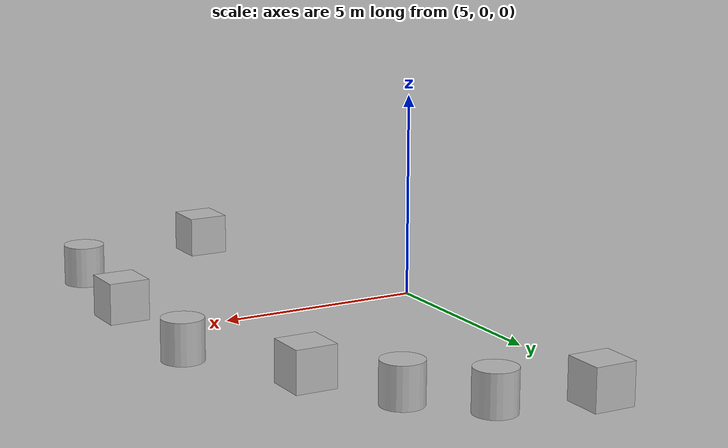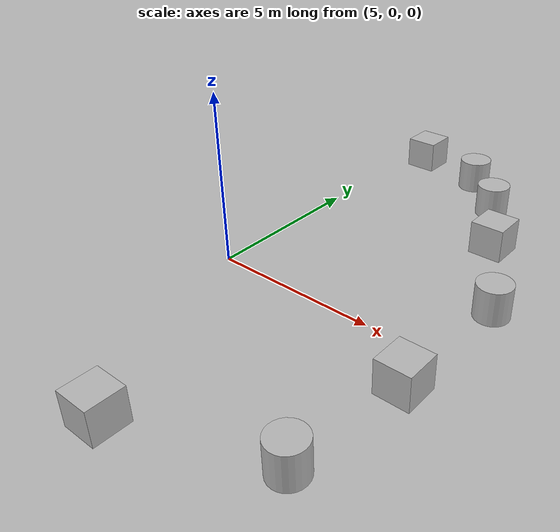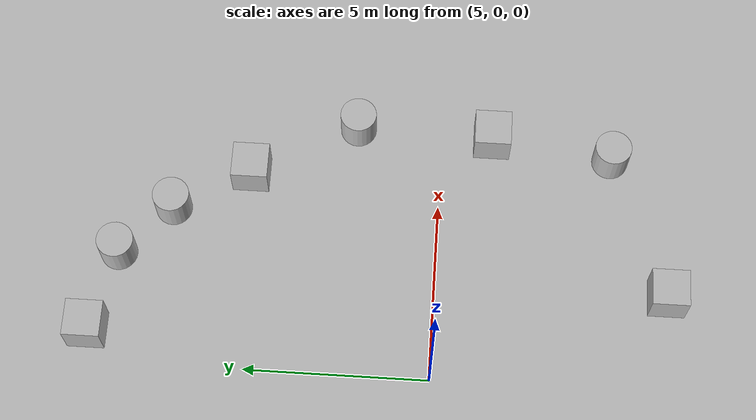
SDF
<sdf version="1.4">
 <world name="default">
  <include><uri>model://ground_plane</uri></include>
  <include><uri>model://sun</uri></include>
  <model name="my_mesh">
   <static>true</static>
   <link name="body">
    <collision name="geom"><geometry><mesh><uri>file://pasto1.dae</uri></mesh></geometry></collision>
    <visual name="visual"><geometry><mesh><uri>file://pasto1.dae</uri></mesh></geometry></visual>
   </link>
   <link name="Box1">
    <pose>7.675451 -6.285091 0.523794 .0 .0 .0</pose>
    <inertial><mass>0.1</mass></inertial>
    <collision name="Box1_collision"><geometry><box><size>1 1 1</size></box></geometry></collision>
    <visual name="Box1_visual"><geometry><box><size>1 1 1</size></box></geometry></visual>
   </link>
   <link name="Box2">
    <pose>12.094172 -1.407658 0.523194 .0 .0 .0</pose>
    <inertial><mass>0.1</mass></inertial>
    <collision name="Box2_collision"><geometry><box><size>1 1 1</size></box></geometry></collision>
    <visual name="Box2_visual"><geometry><box><size>1 1 1</size></box></geometry></visual>
   </link>
   <link name="Box3">
    <pose>10.69540 5.231697 0.523794 .0 .0 .0</pose>
    <inertial><mass>0.1</mass></inertial>
    <collision name="Box3_collision"><geometry><box><size>1 1 1</size></box></geometry></collision>
    <visual name="Box3_visual"><geometry><box><size>1 1 1</size></box></geometry></visual>
   </link>
   <link name="Box4">
    <pose>5.8616919 9.229774 0.523794 .0 .0 .0</pose>
    <inertial><mass>0.1</mass></inertial>
    <collision name="Box4_collision"><geometry><box><size>1 1 1</size></box></geometry></collision>
    <visual name="Box4_visual"><geometry><box><size>1 1 1</size></box></geometry></visual>
   </link>
   <link name="Cilindro1">
    <pose>8.117650 8.651960 0.523794 0 0 0</pose>
    <collision name="collision">
     <geometry><cylinder><radius>0.5</radius><length>1</length></cylinder></geometry>
    </collision>
    <visual name="visual">
     <geometry><cylinder><radius>0.5</radius><length>1</length></cylinder></geometry>
    </visual>
   </link>
   <link name="Cilindro2">
    <pose>12.244259 2.348959 0.523787 0 0 0</pose>
    <collision name="collision">
     <geometry><cylinder><radius>0.5</radius><length>1</length></cylinder></geometry>
    </collision>
    <visual name="visual">
     <geometry><cylinder><radius>0.5</radius><length>1</length></cylinder></geometry>
    </visual>
   </link>
   <link name="Cilindro3">
    <pose>11.672030 -4.734337 0.523787 0 0 0</pose>
    <collision name="collision">
     <geometry><cylinder><radius>0.5</radius><length>1</length></cylinder></geometry>
    </collision>
    <visual name="visual">
     <geometry><cylinder><radius>0.5</radius><length>1</length></cylinder></geometry>
    </visual>
   </link>
   <link name="Cilindro4">
    <pose>9.533050 7.296705 0.523792 0 0 0</pose>
    <collision name="collision">
     <geometry><cylinder><radius>0.5</radius><length>1</length></cylinder></geometry>
    </collision>
    <visual name="visual">
     <geometry><cylinder><radius>0.5</radius><length>1</length></cylinder></geometry>
    </visual>
   </link>
  </model>
 </world>
</sdf>
